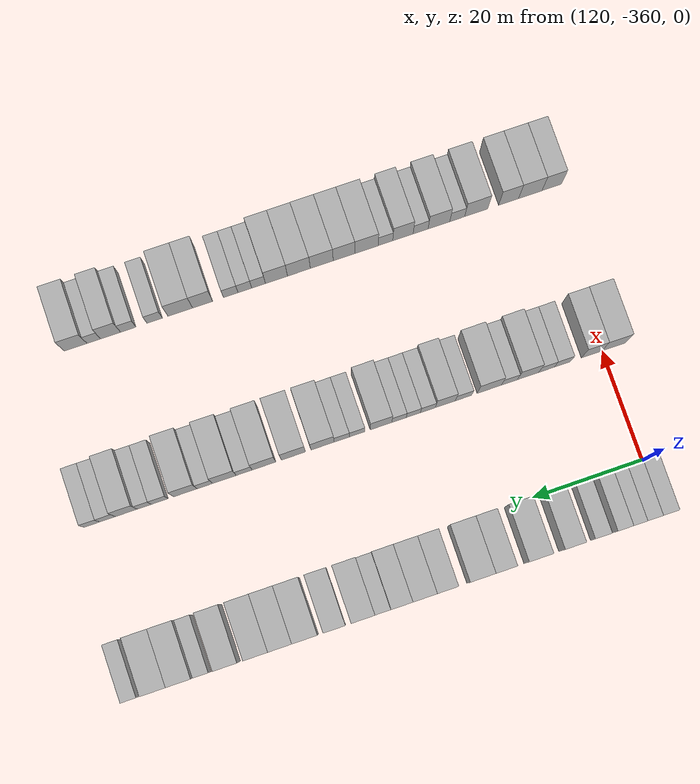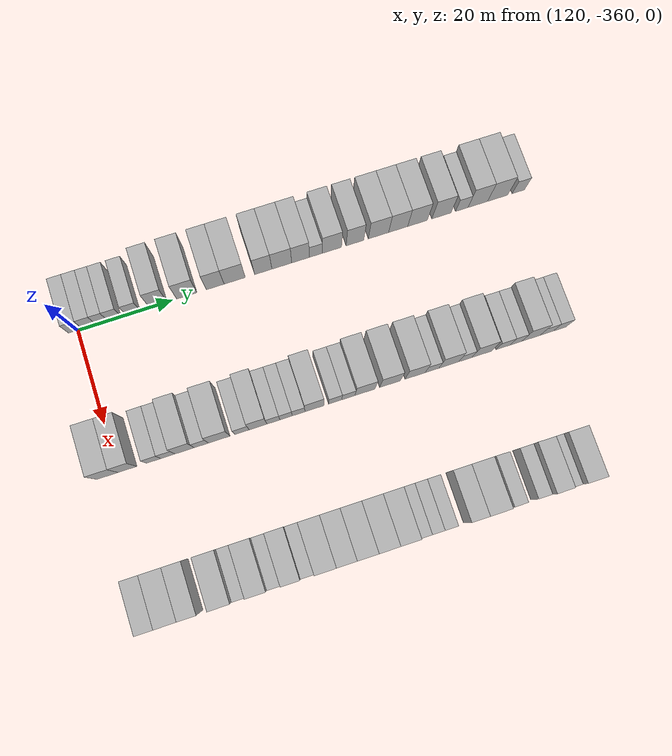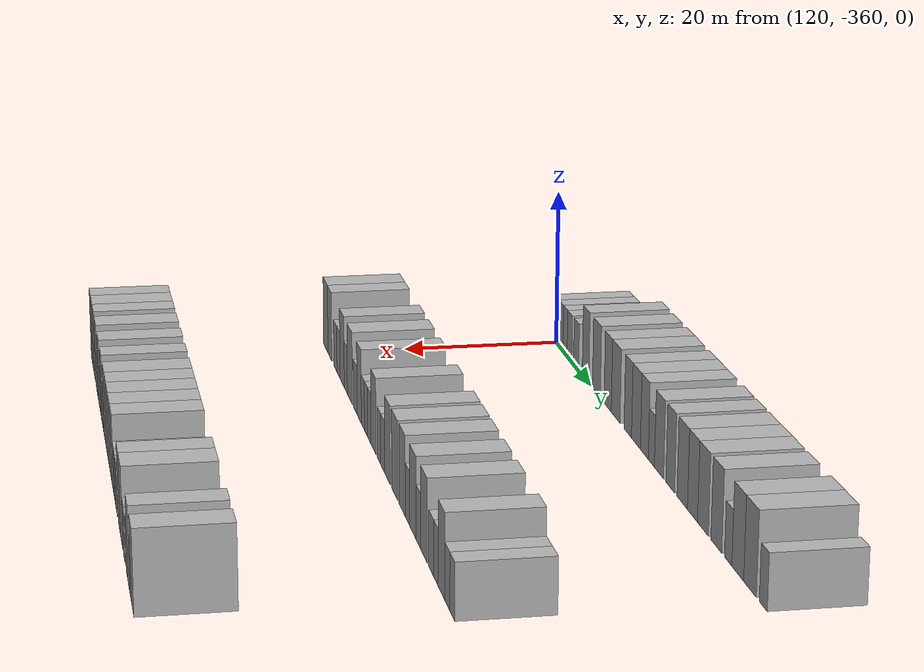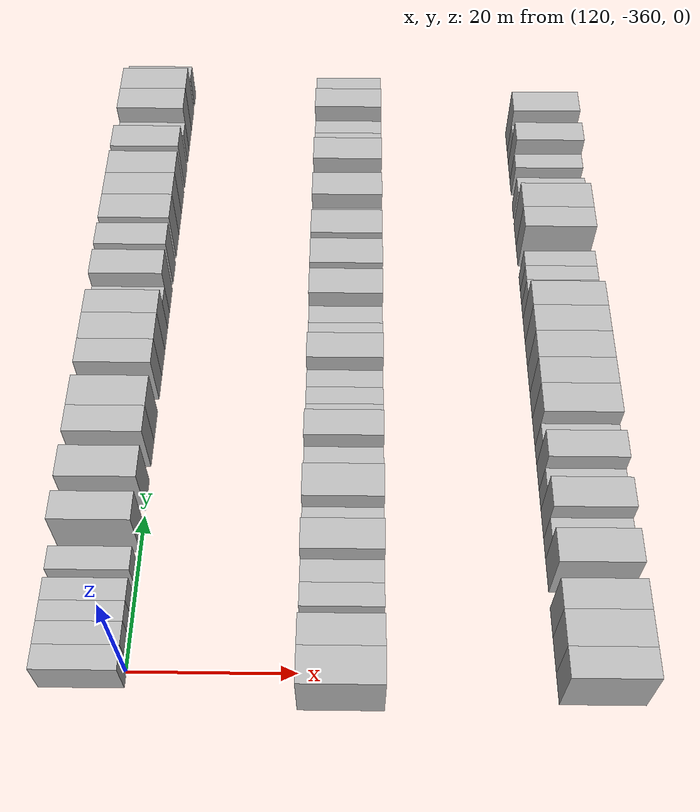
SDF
<sdf version="1.6">
 <world name="default">
  <model name="building_694">
   <static>1</static>
   <pose>115.0000 -360.4342 0 0.000000 0.000000 0.000000</pose>
   <link name="link">
    <pose>0 0 3.00 0 0 0</pose>
    <collision name="collision"><geometry><box><size>10.0000 2.9093 6.0000</size></box></geometry></collision>
    <visual name="visual">
     <cast_shadows>0</cast_shadows>
     <geometry><box><size>10.0000 2.9093 6.0000</size></box></geometry>
     <material>
      <script>
       <uri>model://HANNAS_wall/materials/scripts</uri>
       <uri>model://HANNAS_wall/materials/textures</uri>
       <name>vrc/HANNAS_wall</name>
      </script>
     </material>
    </visual>
   </link>
  </model>
  <model name="building_695">
   <static>1</static>
   <pose>115.0000 -357.5876 0 0.000000 0.000000 0.000000</pose>
   <link name="link">
    <pose>0 0 3.00 0 0 0</pose>
    <collision name="collision"><geometry><box><size>10.0000 2.7839 6.0000</size></box></geometry></collision>
    <visual name="visual">
     <cast_shadows>0</cast_shadows>
     <geometry><box><size>10.0000 2.7839 6.0000</size></box></geometry>
     <material>
      <script>
       <uri>model://HANNAS_wall/materials/scripts</uri>
       <uri>model://HANNAS_wall/materials/textures</uri>
       <name>vrc/HANNAS_wall</name>
      </script>
     </material>
    </visual>
   </link>
  </model>
  <model name="building_696">
   <static>1</static>
   <pose>115.0000 -354.9583 0 0.000000 0.000000 0.000000</pose>
   <link name="link">
    <pose>0 0 3.00 0 0 0</pose>
    <collision name="collision"><geometry><box><size>10.0000 2.4748 6.0000</size></box></geometry></collision>
    <visual name="visual">
     <cast_shadows>0</cast_shadows>
     <geometry><box><size>10.0000 2.4748 6.0000</size></box></geometry>
     <material>
      <script>
       <uri>model://HANNAS_wall/materials/scripts</uri>
       <uri>model://HANNAS_wall/materials/textures</uri>
       <name>vrc/HANNAS_wall</name>
      </script>
     </material>
    </visual>
   </link>
  </model>
  <model name="building_697">
   <static>1</static>
   <pose>115.0000 -352.3182 0 0.000000 0.000000 0.000000</pose>
   <link name="link">
    <pose>0 0 3.00 0 0 0</pose>
    <collision name="collision"><geometry><box><size>10.0000 2.8052 6.0000</size></box></geometry></collision>
    <visual name="visual">
     <cast_shadows>0</cast_shadows>
     <geometry><box><size>10.0000 2.8052 6.0000</size></box></geometry>
     <material>
      <script>
       <uri>model://HANNAS_wall/materials/scripts</uri>
       <uri>model://HANNAS_wall/materials/textures</uri>
       <name>vrc/HANNAS_wall</name>
      </script>
     </material>
    </visual>
   </link>
  </model>
  <model name="building_698">
   <static>1</static>
   <pose>115.0000 -348.4206 0 0.000000 0.000000 0.000000</pose>
   <link name="link">
    <pose>0 0 3.00 0 0 0</pose>
    <collision name="collision"><geometry><box><size>10.0000 2.9900 6.0000</size></box></geometry></collision>
    <visual name="visual">
     <cast_shadows>0</cast_shadows>
     <geometry><box><size>10.0000 2.9900 6.0000</size></box></geometry>
     <material>
      <script>
       <uri>model://HANNAS_wall/materials/scripts</uri>
       <uri>model://HANNAS_wall/materials/textures</uri>
       <name>vrc/HANNAS_wall</name>
      </script>
     </material>
    </visual>
   </link>
  </model>
  <model name="building_699">
   <static>1</static>
   <pose>115.0000 -343.0592 0 0.000000 0.000000 0.000000</pose>
   <link name="link">
    <pose>0 0 4.50 0 0 0</pose>
    <collision name="collision"><geometry><box><size>10.0000 3.7328 9.0000</size></box></geometry></collision>
    <visual name="visual">
     <cast_shadows>0</cast_shadows>
     <geometry><box><size>10.0000 3.7328 9.0000</size></box></geometry>
     <material>
      <script>
       <uri>model://HANNAS_wall/materials/scripts</uri>
       <uri>model://HANNAS_wall/materials/textures</uri>
       <name>vrc/HANNAS_wall</name>
      </script>
     </material>
    </visual>
   </link>
  </model>
  <model name="building_700">
   <static>1</static>
   <pose>115.0000 -337.0517 0 0.000000 0.000000 0.000000</pose>
   <link name="link">
    <pose>0 0 4.50 0 0 0</pose>
    <collision name="collision"><geometry><box><size>10.0000 4.2821 9.0000</size></box></geometry></collision>
    <visual name="visual">
     <cast_shadows>0</cast_shadows>
     <geometry><box><size>10.0000 4.2821 9.0000</size></box></geometry>
     <material>
      <script>
       <uri>model://HANNAS_wall/materials/scripts</uri>
       <uri>model://HANNAS_wall/materials/textures</uri>
       <name>vrc/HANNAS_wall</name>
      </script>
     </material>
    </visual>
   </link>
  </model>
  <model name="building_701">
   <static>1</static>
   <pose>115.0000 -331.0235 0 0.000000 0.000000 0.000000</pose>
   <link name="link">
    <pose>0 0 4.50 0 0 0</pose>
    <collision name="collision"><geometry><box><size>10.0000 3.7744 9.0000</size></box></geometry></collision>
    <visual name="visual">
     <cast_shadows>0</cast_shadows>
     <geometry><box><size>10.0000 3.7744 9.0000</size></box></geometry>
     <material>
      <script>
       <uri>model://HANNAS_wall/materials/scripts</uri>
       <uri>model://HANNAS_wall/materials/textures</uri>
       <name>vrc/HANNAS_wall</name>
      </script>
     </material>
    </visual>
   </link>
  </model>
  <model name="building_702">
   <static>1</static>
   <pose>115.0000 -326.8913 0 0.000000 0.000000 0.000000</pose>
   <link name="link">
    <pose>0 0 4.50 0 0 0</pose>
    <collision name="collision"><geometry><box><size>10.0000 4.4900 9.0000</size></box></geometry></collision>
    <visual name="visual">
     <cast_shadows>0</cast_shadows>
     <geometry><box><size>10.0000 4.4900 9.0000</size></box></geometry>
     <material>
      <script>
       <uri>model://HANNAS_wall/materials/scripts</uri>
       <uri>model://HANNAS_wall/materials/textures</uri>
       <name>vrc/HANNAS_wall</name>
      </script>
     </material>
    </visual>
   </link>
  </model>
  <model name="building_703">
   <static>1</static>
   <pose>115.0000 -320.7964 0 0.000000 0.000000 0.000000</pose>
   <link name="link">
    <pose>0 0 4.50 0 0 0</pose>
    <collision name="collision"><geometry><box><size>10.0000 3.6999 9.0000</size></box></geometry></collision>
    <visual name="visual">
     <cast_shadows>0</cast_shadows>
     <geometry><box><size>10.0000 3.6999 9.0000</size></box></geometry>
     <material>
      <script>
       <uri>model://HANNAS_wall/materials/scripts</uri>
       <uri>model://HANNAS_wall/materials/textures</uri>
       <name>vrc/HANNAS_wall</name>
      </script>
     </material>
    </visual>
   </link>
  </model>
  <model name="building_704">
   <static>1</static>
   <pose>115.0000 -316.8280 0 0.000000 0.000000 0.000000</pose>
   <link name="link">
    <pose>0 0 4.50 0 0 0</pose>
    <collision name="collision"><geometry><box><size>10.0000 4.2368 9.0000</size></box></geometry></collision>
    <visual name="visual">
     <cast_shadows>0</cast_shadows>
     <geometry><box><size>10.0000 4.2368 9.0000</size></box></geometry>
     <material>
      <script>
       <uri>model://HANNAS_wall/materials/scripts</uri>
       <uri>model://HANNAS_wall/materials/textures</uri>
       <name>vrc/HANNAS_wall</name>
      </script>
     </material>
    </visual>
   </link>
  </model>
  <model name="building_705">
   <static>1</static>
   <pose>115.0000 -312.8181 0 0.000000 0.000000 0.000000</pose>
   <link name="link">
    <pose>0 0 4.50 0 0 0</pose>
    <collision name="collision"><geometry><box><size>10.0000 3.7831 9.0000</size></box></geometry></collision>
    <visual name="visual">
     <cast_shadows>0</cast_shadows>
     <geometry><box><size>10.0000 3.7831 9.0000</size></box></geometry>
     <material>
      <script>
       <uri>model://HANNAS_wall/materials/scripts</uri>
       <uri>model://HANNAS_wall/materials/textures</uri>
       <name>vrc/HANNAS_wall</name>
      </script>
     </material>
    </visual>
   </link>
  </model>
  <model name="building_706">
   <static>1</static>
   <pose>115.0000 -309.5266 0 0.000000 0.000000 0.000000</pose>
   <link name="link">
    <pose>0 0 3.00 0 0 0</pose>
    <collision name="collision"><geometry><box><size>10.0000 2.7998 6.0000</size></box></geometry></collision>
    <visual name="visual">
     <cast_shadows>0</cast_shadows>
     <geometry><box><size>10.0000 2.7998 6.0000</size></box></geometry>
     <material>
      <script>
       <uri>model://HANNAS_wall/materials/scripts</uri>
       <uri>model://HANNAS_wall/materials/textures</uri>
       <name>vrc/HANNAS_wall</name>
      </script>
     </material>
    </visual>
   </link>
  </model>
  <model name="building_707">
   <static>1</static>
   <pose>115.0000 -306.0606 0 0.000000 0.000000 0.000000</pose>
   <link name="link">
    <pose>0 0 4.50 0 0 0</pose>
    <collision name="collision"><geometry><box><size>10.0000 4.1321 9.0000</size></box></geometry></collision>
    <visual name="visual">
     <cast_shadows>0</cast_shadows>
     <geometry><box><size>10.0000 4.1321 9.0000</size></box></geometry>
     <material>
      <script>
       <uri>model://HANNAS_wall/materials/scripts</uri>
       <uri>model://HANNAS_wall/materials/textures</uri>
       <name>vrc/HANNAS_wall</name>
      </script>
     </material>
    </visual>
   </link>
  </model>
  <model name="building_708">
   <static>1</static>
   <pose>115.0000 -301.0825 0 0.000000 0.000000 0.000000</pose>
   <link name="link">
    <pose>0 0 4.50 0 0 0</pose>
    <collision name="collision"><geometry><box><size>10.0000 3.8241 9.0000</size></box></geometry></collision>
    <visual name="visual">
     <cast_shadows>0</cast_shadows>
     <geometry><box><size>10.0000 3.8241 9.0000</size></box></geometry>
     <material>
      <script>
       <uri>model://HANNAS_wall/materials/scripts</uri>
       <uri>model://HANNAS_wall/materials/textures</uri>
       <name>vrc/HANNAS_wall</name>
      </script>
     </material>
    </visual>
   </link>
  </model>
  <model name="building_709">
   <static>1</static>
   <pose>115.0000 -295.9669 0 0.000000 0.000000 0.000000</pose>
   <link name="link">
    <pose>0 0 4.50 0 0 0</pose>
    <collision name="collision"><geometry><box><size>10.0000 4.4071 9.0000</size></box></geometry></collision>
    <visual name="visual">
     <cast_shadows>0</cast_shadows>
     <geometry><box><size>10.0000 4.4071 9.0000</size></box></geometry>
     <material>
      <script>
       <uri>model://HANNAS_wall/materials/scripts</uri>
       <uri>model://HANNAS_wall/materials/textures</uri>
       <name>vrc/HANNAS_wall</name>
      </script>
     </material>
    </visual>
   </link>
  </model>
  <model name="building_710">
   <static>1</static>
   <pose>115.0000 -291.6889 0 0.000000 0.000000 0.000000</pose>
   <link name="link">
    <pose>0 0 4.50 0 0 0</pose>
    <collision name="collision"><geometry><box><size>10.0000 4.1489 9.0000</size></box></geometry></collision>
    <visual name="visual">
     <cast_shadows>0</cast_shadows>
     <geometry><box><size>10.0000 4.1489 9.0000</size></box></geometry>
     <material>
      <script>
       <uri>model://HANNAS_wall/materials/scripts</uri>
       <uri>model://HANNAS_wall/materials/textures</uri>
       <name>vrc/HANNAS_wall</name>
      </script>
     </material>
    </visual>
   </link>
  </model>
  <model name="building_711">
   <static>1</static>
   <pose>115.0000 -287.4719 0 0.000000 0.000000 0.000000</pose>
   <link name="link">
    <pose>0 0 4.50 0 0 0</pose>
    <collision name="collision"><geometry><box><size>10.0000 4.2850 9.0000</size></box></geometry></collision>
    <visual name="visual">
     <cast_shadows>0</cast_shadows>
     <geometry><box><size>10.0000 4.2850 9.0000</size></box></geometry>
     <material>
      <script>
       <uri>model://HANNAS_wall/materials/scripts</uri>
       <uri>model://HANNAS_wall/materials/textures</uri>
       <name>vrc/HANNAS_wall</name>
      </script>
     </material>
    </visual>
   </link>
  </model>
  <model name="building_712">
   <static>1</static>
   <pose>115.0000 -282.2263 0 0.000000 0.000000 0.000000</pose>
   <link name="link">
    <pose>0 0 4.50 0 0 0</pose>
    <collision name="collision"><geometry><box><size>10.0000 4.2063 9.0000</size></box></geometry></collision>
    <visual name="visual">
     <cast_shadows>0</cast_shadows>
     <geometry><box><size>10.0000 4.2063 9.0000</size></box></geometry>
     <material>
      <script>
       <uri>model://HANNAS_wall/materials/scripts</uri>
       <uri>model://HANNAS_wall/materials/textures</uri>
       <name>vrc/HANNAS_wall</name>
      </script>
     </material>
    </visual>
   </link>
  </model>
  <model name="building_713">
   <static>1</static>
   <pose>115.0000 -277.7605 0 0.000000 0.000000 0.000000</pose>
   <link name="link">
    <pose>0 0 3.00 0 0 0</pose>
    <collision name="collision"><geometry><box><size>10.0000 2.7254 6.0000</size></box></geometry></collision>
    <visual name="visual">
     <cast_shadows>0</cast_shadows>
     <geometry><box><size>10.0000 2.7254 6.0000</size></box></geometry>
     <material>
      <script>
       <uri>model://HANNAS_wall/materials/scripts</uri>
       <uri>model://HANNAS_wall/materials/textures</uri>
       <name>vrc/HANNAS_wall</name>
      </script>
     </material>
    </visual>
   </link>
  </model>
  <model name="building_714">
   <static>1</static>
   <pose>115.0000 -274.2470 0 0.000000 0.000000 0.000000</pose>
   <link name="link">
    <pose>0 0 4.50 0 0 0</pose>
    <collision name="collision"><geometry><box><size>10.0000 4.3015 9.0000</size></box></geometry></collision>
    <visual name="visual">
     <cast_shadows>0</cast_shadows>
     <geometry><box><size>10.0000 4.3015 9.0000</size></box></geometry>
     <material>
      <script>
       <uri>model://HANNAS_wall/materials/scripts</uri>
       <uri>model://HANNAS_wall/materials/textures</uri>
       <name>vrc/HANNAS_wall</name>
      </script>
     </material>
    </visual>
   </link>
  </model>
  <model name="building_715">
   <static>1</static>
   <pose>115.0000 -269.8625 0 0.000000 0.000000 0.000000</pose>
   <link name="link">
    <pose>0 0 4.50 0 0 0</pose>
    <collision name="collision"><geometry><box><size>10.0000 4.4676 9.0000</size></box></geometry></collision>
    <visual name="visual">
     <cast_shadows>0</cast_shadows>
     <geometry><box><size>10.0000 4.4676 9.0000</size></box></geometry>
     <material>
      <script>
       <uri>model://HANNAS_wall/materials/scripts</uri>
       <uri>model://HANNAS_wall/materials/textures</uri>
       <name>vrc/HANNAS_wall</name>
      </script>
     </material>
    </visual>
   </link>
  </model>
  <model name="building_716">
   <static>1</static>
   <pose>115.0000 -265.2580 0 0.000000 0.000000 0.000000</pose>
   <link name="link">
    <pose>0 0 3.00 0 0 0</pose>
    <collision name="collision"><geometry><box><size>10.0000 2.7414 6.0000</size></box></geometry></collision>
    <visual name="visual">
     <cast_shadows>0</cast_shadows>
     <geometry><box><size>10.0000 2.7414 6.0000</size></box></geometry>
     <material>
      <script>
       <uri>model://HANNAS_wall/materials/scripts</uri>
       <uri>model://HANNAS_wall/materials/textures</uri>
       <name>vrc/HANNAS_wall</name>
      </script>
     </material>
    </visual>
   </link>
  </model>
  <model name="building_914">
   <static>1</static>
   <pose>145.0000 -362.0360 0 0.000000 0.000000 0.000000</pose>
   <link name="link">
    <pose>0 0 4.50 0 0 0</pose>
    <collision name="collision"><geometry><box><size>10.0000 4.3431 9.0000</size></box></geometry></collision>
    <visual name="visual">
     <cast_shadows>0</cast_shadows>
     <geometry><box><size>10.0000 4.3431 9.0000</size></box></geometry>
     <material>
      <script>
       <uri>model://HANNAS_wall/materials/scripts</uri>
       <uri>model://HANNAS_wall/materials/textures</uri>
       <name>vrc/HANNAS_wall</name>
      </script>
     </material>
    </visual>
   </link>
  </model>
  <model name="building_915">
   <static>1</static>
   <pose>145.0000 -357.9948 0 0.000000 0.000000 0.000000</pose>
   <link name="link">
    <pose>0 0 4.50 0 0 0</pose>
    <collision name="collision"><geometry><box><size>10.0000 3.7392 9.0000</size></box></geometry></collision>
    <visual name="visual">
     <cast_shadows>0</cast_shadows>
     <geometry><box><size>10.0000 3.7392 9.0000</size></box></geometry>
     <material>
      <script>
       <uri>model://HANNAS_wall/materials/scripts</uri>
       <uri>model://HANNAS_wall/materials/textures</uri>
       <name>vrc/HANNAS_wall</name>
      </script>
     </material>
    </visual>
   </link>
  </model>
  <model name="building_916">
   <static>1</static>
   <pose>145.0000 -352.6553 0 0.000000 0.000000 0.000000</pose>
   <link name="link">
    <pose>0 0 3.00 0 0 0</pose>
    <collision name="collision"><geometry><box><size>10.0000 2.9399 6.0000</size></box></geometry></collision>
    <visual name="visual">
     <cast_shadows>0</cast_shadows>
     <geometry><box><size>10.0000 2.9399 6.0000</size></box></geometry>
     <material>
      <script>
       <uri>model://HANNAS_wall/materials/scripts</uri>
       <uri>model://HANNAS_wall/materials/textures</uri>
       <name>vrc/HANNAS_wall</name>
      </script>
     </material>
    </visual>
   </link>
  </model>
  <model name="building_917">
   <static>1</static>
   <pose>145.0000 -349.7509 0 0.000000 0.000000 0.000000</pose>
   <link name="link">
    <pose>0 0 3.00 0 0 0</pose>
    <collision name="collision"><geometry><box><size>10.0000 2.8688 6.0000</size></box></geometry></collision>
    <visual name="visual">
     <cast_shadows>0</cast_shadows>
     <geometry><box><size>10.0000 2.8688 6.0000</size></box></geometry>
     <material>
      <script>
       <uri>model://HANNAS_wall/materials/scripts</uri>
       <uri>model://HANNAS_wall/materials/textures</uri>
       <name>vrc/HANNAS_wall</name>
      </script>
     </material>
    </visual>
   </link>
  </model>
  <model name="building_918">
   <static>1</static>
   <pose>145.0000 -346.3592 0 0.000000 0.000000 0.000000</pose>
   <link name="link">
    <pose>0 0 4.50 0 0 0</pose>
    <collision name="collision"><geometry><box><size>10.0000 3.9148 9.0000</size></box></geometry></collision>
    <visual name="visual">
     <cast_shadows>0</cast_shadows>
     <geometry><box><size>10.0000 3.9148 9.0000</size></box></geometry>
     <material>
      <script>
       <uri>model://HANNAS_wall/materials/scripts</uri>
       <uri>model://HANNAS_wall/materials/textures</uri>
       <name>vrc/HANNAS_wall</name>
      </script>
     </material>
    </visual>
   </link>
  </model>
  <model name="building_919">
   <static>1</static>
   <pose>145.0000 -342.9430 0 0.000000 0.000000 0.000000</pose>
   <link name="link">
    <pose>0 0 3.00 0 0 0</pose>
    <collision name="collision"><geometry><box><size>10.0000 2.9177 6.0000</size></box></geometry></collision>
    <visual name="visual">
     <cast_shadows>0</cast_shadows>
     <geometry><box><size>10.0000 2.9177 6.0000</size></box></geometry>
     <material>
      <script>
       <uri>model://HANNAS_wall/materials/scripts</uri>
       <uri>model://HANNAS_wall/materials/textures</uri>
       <name>vrc/HANNAS_wall</name>
      </script>
     </material>
    </visual>
   </link>
  </model>
  <model name="building_920">
   <static>1</static>
   <pose>145.0000 -339.2850 0 0.000000 0.000000 0.000000</pose>
   <link name="link">
    <pose>0 0 4.50 0 0 0</pose>
    <collision name="collision"><geometry><box><size>10.0000 4.3983 9.0000</size></box></geometry></collision>
    <visual name="visual">
     <cast_shadows>0</cast_shadows>
     <geometry><box><size>10.0000 4.3983 9.0000</size></box></geometry>
     <material>
      <script>
       <uri>model://HANNAS_wall/materials/scripts</uri>
       <uri>model://HANNAS_wall/materials/textures</uri>
       <name>vrc/HANNAS_wall</name>
      </script>
     </material>
    </visual>
   </link>
  </model>
  <model name="building_921">
   <static>1</static>
   <pose>145.0000 -334.5981 0 0.000000 0.000000 0.000000</pose>
   <link name="link">
    <pose>0 0 3.00 0 0 0</pose>
    <collision name="collision"><geometry><box><size>10.0000 2.9754 6.0000</size></box></geometry></collision>
    <visual name="visual">
     <cast_shadows>0</cast_shadows>
     <geometry><box><size>10.0000 2.9754 6.0000</size></box></geometry>
     <material>
      <script>
       <uri>model://HANNAS_wall/materials/scripts</uri>
       <uri>model://HANNAS_wall/materials/textures</uri>
       <name>vrc/HANNAS_wall</name>
      </script>
     </material>
    </visual>
   </link>
  </model>
  <model name="building_922">
   <static>1</static>
   <pose>145.0000 -331.2834 0 0.000000 0.000000 0.000000</pose>
   <link name="link">
    <pose>0 0 4.50 0 0 0</pose>
    <collision name="collision"><geometry><box><size>10.0000 3.6539 9.0000</size></box></geometry></collision>
    <visual name="visual">
     <cast_shadows>0</cast_shadows>
     <geometry><box><size>10.0000 3.6539 9.0000</size></box></geometry>
     <material>
      <script>
       <uri>model://HANNAS_wall/materials/scripts</uri>
       <uri>model://HANNAS_wall/materials/textures</uri>
       <name>vrc/HANNAS_wall</name>
      </script>
     </material>
    </visual>
   </link>
  </model>
  <model name="building_923">
   <static>1</static>
   <pose>145.0000 -328.1130 0 0.000000 0.000000 0.000000</pose>
   <link name="link">
    <pose>0 0 3.00 0 0 0</pose>
    <collision name="collision"><geometry><box><size>10.0000 2.6869 6.0000</size></box></geometry></collision>
    <visual name="visual">
     <cast_shadows>0</cast_shadows>
     <geometry><box><size>10.0000 2.6869 6.0000</size></box></geometry>
     <material>
      <script>
       <uri>model://HANNAS_wall/materials/scripts</uri>
       <uri>model://HANNAS_wall/materials/textures</uri>
       <name>vrc/HANNAS_wall</name>
      </script>
     </material>
    </visual>
   </link>
  </model>
  <model name="building_924">
   <static>1</static>
   <pose>145.0000 -325.4902 0 0.000000 0.000000 0.000000</pose>
   <link name="link">
    <pose>0 0 3.00 0 0 0</pose>
    <collision name="collision"><geometry><box><size>10.0000 2.5587 6.0000</size></box></geometry></collision>
    <visual name="visual">
     <cast_shadows>0</cast_shadows>
     <geometry><box><size>10.0000 2.5587 6.0000</size></box></geometry>
     <material>
      <script>
       <uri>model://HANNAS_wall/materials/scripts</uri>
       <uri>model://HANNAS_wall/materials/textures</uri>
       <name>vrc/HANNAS_wall</name>
      </script>
     </material>
    </visual>
   </link>
  </model>
  <model name="building_925">
   <static>1</static>
   <pose>145.0000 -322.8962 0 0.000000 0.000000 0.000000</pose>
   <link name="link">
    <pose>0 0 3.00 0 0 0</pose>
    <collision name="collision"><geometry><box><size>10.0000 2.6293 6.0000</size></box></geometry></collision>
    <visual name="visual">
     <cast_shadows>0</cast_shadows>
     <geometry><box><size>10.0000 2.6293 6.0000</size></box></geometry>
     <material>
      <script>
       <uri>model://HANNAS_wall/materials/scripts</uri>
       <uri>model://HANNAS_wall/materials/textures</uri>
       <name>vrc/HANNAS_wall</name>
      </script>
     </material>
    </visual>
   </link>
  </model>
  <model name="building_926">
   <static>1</static>
   <pose>145.0000 -319.6307 0 0.000000 0.000000 0.000000</pose>
   <link name="link">
    <pose>0 0 4.50 0 0 0</pose>
    <collision name="collision"><geometry><box><size>10.0000 3.9016 9.0000</size></box></geometry></collision>
    <visual name="visual">
     <cast_shadows>0</cast_shadows>
     <geometry><box><size>10.0000 3.9016 9.0000</size></box></geometry>
     <material>
      <script>
       <uri>model://HANNAS_wall/materials/scripts</uri>
       <uri>model://HANNAS_wall/materials/textures</uri>
       <name>vrc/HANNAS_wall</name>
      </script>
     </material>
    </visual>
   </link>
  </model>
  <model name="building_927">
   <static>1</static>
   <pose>145.0000 -315.3042 0 0.000000 0.000000 0.000000</pose>
   <link name="link">
    <pose>0 0 3.00 0 0 0</pose>
    <collision name="collision"><geometry><box><size>10.0000 2.7514 6.0000</size></box></geometry></collision>
    <visual name="visual">
     <cast_shadows>0</cast_shadows>
     <geometry><box><size>10.0000 2.7514 6.0000</size></box></geometry>
     <material>
      <script>
       <uri>model://HANNAS_wall/materials/scripts</uri>
       <uri>model://HANNAS_wall/materials/textures</uri>
       <name>vrc/HANNAS_wall</name>
      </script>
     </material>
    </visual>
   </link>
  </model>
  <model name="building_928">
   <static>1</static>
   <pose>145.0000 -312.5462 0 0.000000 0.000000 0.000000</pose>
   <link name="link">
    <pose>0 0 3.00 0 0 0</pose>
    <collision name="collision"><geometry><box><size>10.0000 2.7645 6.0000</size></box></geometry></collision>
    <visual name="visual">
     <cast_shadows>0</cast_shadows>
     <geometry><box><size>10.0000 2.7645 6.0000</size></box></geometry>
     <material>
      <script>
       <uri>model://HANNAS_wall/materials/scripts</uri>
       <uri>model://HANNAS_wall/materials/textures</uri>
       <name>vrc/HANNAS_wall</name>
      </script>
     </material>
    </visual>
   </link>
  </model>
  <model name="building_929">
   <static>1</static>
   <pose>145.0000 -309.0702 0 0.000000 0.000000 0.000000</pose>
   <link name="link">
    <pose>0 0 4.50 0 0 0</pose>
    <collision name="collision"><geometry><box><size>10.0000 4.1875 9.0000</size></box></geometry></collision>
    <visual name="visual">
     <cast_shadows>0</cast_shadows>
     <geometry><box><size>10.0000 4.1875 9.0000</size></box></geometry>
     <material>
      <script>
       <uri>model://HANNAS_wall/materials/scripts</uri>
       <uri>model://HANNAS_wall/materials/textures</uri>
       <name>vrc/HANNAS_wall</name>
      </script>
     </material>
    </visual>
   </link>
  </model>
  <model name="building_930">
   <static>1</static>
   <pose>145.0000 -303.8087 0 0.000000 0.000000 0.000000</pose>
   <link name="link">
    <pose>0 0 4.50 0 0 0</pose>
    <collision name="collision"><geometry><box><size>10.0000 4.3353 9.0000</size></box></geometry></collision>
    <visual name="visual">
     <cast_shadows>0</cast_shadows>
     <geometry><box><size>10.0000 4.3353 9.0000</size></box></geometry>
     <material>
      <script>
       <uri>model://HANNAS_wall/materials/scripts</uri>
       <uri>model://HANNAS_wall/materials/textures</uri>
       <name>vrc/HANNAS_wall</name>
      </script>
     </material>
    </visual>
   </link>
  </model>
  <model name="building_931">
   <static>1</static>
   <pose>145.0000 -298.5209 0 0.000000 0.000000 0.000000</pose>
   <link name="link">
    <pose>0 0 4.50 0 0 0</pose>
    <collision name="collision"><geometry><box><size>10.0000 4.2405 9.0000</size></box></geometry></collision>
    <visual name="visual">
     <cast_shadows>0</cast_shadows>
     <geometry><box><size>10.0000 4.2405 9.0000</size></box></geometry>
     <material>
      <script>
       <uri>model://HANNAS_wall/materials/scripts</uri>
       <uri>model://HANNAS_wall/materials/textures</uri>
       <name>vrc/HANNAS_wall</name>
      </script>
     </material>
    </visual>
   </link>
  </model>
  <model name="building_932">
   <static>1</static>
   <pose>145.0000 -294.9582 0 0.000000 0.000000 0.000000</pose>
   <link name="link">
    <pose>0 0 3.00 0 0 0</pose>
    <collision name="collision"><geometry><box><size>10.0000 2.8849 6.0000</size></box></geometry></collision>
    <visual name="visual">
     <cast_shadows>0</cast_shadows>
     <geometry><box><size>10.0000 2.8849 6.0000</size></box></geometry>
     <material>
      <script>
       <uri>model://HANNAS_wall/materials/scripts</uri>
       <uri>model://HANNAS_wall/materials/textures</uri>
       <name>vrc/HANNAS_wall</name>
      </script>
     </material>
    </visual>
   </link>
  </model>
  <model name="building_933">
   <static>1</static>
   <pose>145.0000 -291.4003 0 0.000000 0.000000 0.000000</pose>
   <link name="link">
    <pose>0 0 4.50 0 0 0</pose>
    <collision name="collision"><geometry><box><size>10.0000 4.2309 9.0000</size></box></geometry></collision>
    <visual name="visual">
     <cast_shadows>0</cast_shadows>
     <geometry><box><size>10.0000 4.2309 9.0000</size></box></geometry>
     <material>
      <script>
       <uri>model://HANNAS_wall/materials/scripts</uri>
       <uri>model://HANNAS_wall/materials/textures</uri>
       <name>vrc/HANNAS_wall</name>
      </script>
     </material>
    </visual>
   </link>
  </model>
  <model name="building_934">
   <static>1</static>
   <pose>145.0000 -287.8944 0 0.000000 0.000000 0.000000</pose>
   <link name="link">
    <pose>0 0 3.00 0 0 0</pose>
    <collision name="collision"><geometry><box><size>10.0000 2.7811 6.0000</size></box></geometry></collision>
    <visual name="visual">
     <cast_shadows>0</cast_shadows>
     <geometry><box><size>10.0000 2.7811 6.0000</size></box></geometry>
     <material>
      <script>
       <uri>model://HANNAS_wall/materials/scripts</uri>
       <uri>model://HANNAS_wall/materials/textures</uri>
       <name>vrc/HANNAS_wall</name>
      </script>
     </material>
    </visual>
   </link>
  </model>
  <model name="building_935">
   <static>1</static>
   <pose>145.0000 -284.4025 0 0.000000 0.000000 0.000000</pose>
   <link name="link">
    <pose>0 0 4.50 0 0 0</pose>
    <collision name="collision"><geometry><box><size>10.0000 4.2026 9.0000</size></box></geometry></collision>
    <visual name="visual">
     <cast_shadows>0</cast_shadows>
     <geometry><box><size>10.0000 4.2026 9.0000</size></box></geometry>
     <material>
      <script>
       <uri>model://HANNAS_wall/materials/scripts</uri>
       <uri>model://HANNAS_wall/materials/textures</uri>
       <name>vrc/HANNAS_wall</name>
      </script>
     </material>
    </visual>
   </link>
  </model>
  <model name="building_936">
   <static>1</static>
   <pose>145.0000 -279.8185 0 0.000000 0.000000 0.000000</pose>
   <link name="link">
    <pose>0 0 3.00 0 0 0</pose>
    <collision name="collision"><geometry><box><size>10.0000 2.9654 6.0000</size></box></geometry></collision>
    <visual name="visual">
     <cast_shadows>0</cast_shadows>
     <geometry><box><size>10.0000 2.9654 6.0000</size></box></geometry>
     <material>
      <script>
       <uri>model://HANNAS_wall/materials/scripts</uri>
       <uri>model://HANNAS_wall/materials/textures</uri>
       <name>vrc/HANNAS_wall</name>
      </script>
     </material>
    </visual>
   </link>
  </model>
  <model name="building_937">
   <static>1</static>
   <pose>145.0000 -277.0603 0 0.000000 0.000000 0.000000</pose>
   <link name="link">
    <pose>0 0 3.00 0 0 0</pose>
    <collision name="collision"><geometry><box><size>10.0000 2.5512 6.0000</size></box></geometry></collision>
    <visual name="visual">
     <cast_shadows>0</cast_shadows>
     <geometry><box><size>10.0000 2.5512 6.0000</size></box></geometry>
     <material>
      <script>
       <uri>model://HANNAS_wall/materials/scripts</uri>
       <uri>model://HANNAS_wall/materials/textures</uri>
       <name>vrc/HANNAS_wall</name>
      </script>
     </material>
    </visual>
   </link>
  </model>
  <model name="building_938">
   <static>1</static>
   <pose>145.0000 -273.8308 0 0.000000 0.000000 0.000000</pose>
   <link name="link">
    <pose>0 0 4.50 0 0 0</pose>
    <collision name="collision"><geometry><box><size>10.0000 3.9078 9.0000</size></box></geometry></collision>
    <visual name="visual">
     <cast_shadows>0</cast_shadows>
     <geometry><box><size>10.0000 3.9078 9.0000</size></box></geometry>
     <material>
      <script>
       <uri>model://HANNAS_wall/materials/scripts</uri>
       <uri>model://HANNAS_wall/materials/textures</uri>
       <name>vrc/HANNAS_wall</name>
      </script>
     </material>
    </visual>
   </link>
  </model>
  <model name="building_939">
   <static>1</static>
   <pose>145.0000 -270.4740 0 0.000000 0.000000 0.000000</pose>
   <link name="link">
    <pose>0 0 3.00 0 0 0</pose>
    <collision name="collision"><geometry><box><size>10.0000 2.8058 6.0000</size></box></geometry></collision>
    <visual name="visual">
     <cast_shadows>0</cast_shadows>
     <geometry><box><size>10.0000 2.8058 6.0000</size></box></geometry>
     <material>
      <script>
       <uri>model://HANNAS_wall/materials/scripts</uri>
       <uri>model://HANNAS_wall/materials/textures</uri>
       <name>vrc/HANNAS_wall</name>
      </script>
     </material>
    </visual>
   </link>
  </model>
  <model name="building_940">
   <static>1</static>
   <pose>145.0000 -267.6651 0 0.000000 0.000000 0.000000</pose>
   <link name="link">
    <pose>0 0 3.00 0 0 0</pose>
    <collision name="collision"><geometry><box><size>10.0000 2.8120 6.0000</size></box></geometry></collision>
    <visual name="visual">
     <cast_shadows>0</cast_shadows>
     <geometry><box><size>10.0000 2.8120 6.0000</size></box></geometry>
     <material>
      <script>
       <uri>model://HANNAS_wall/materials/scripts</uri>
       <uri>model://HANNAS_wall/materials/textures</uri>
       <name>vrc/HANNAS_wall</name>
      </script>
     </material>
    </visual>
   </link>
  </model>
  <model name="building_1136">
   <static>1</static>
   <pose>175.0000 -361.4769 0 0.000000 0.000000 0.000000</pose>
   <link name="link">
    <pose>0 0 4.50 0 0 0</pose>
    <collision name="collision"><geometry><box><size>10.0000 3.6020 9.0000</size></box></geometry></collision>
    <visual name="visual">
     <cast_shadows>0</cast_shadows>
     <geometry><box><size>10.0000 3.6020 9.0000</size></box></geometry>
     <material>
      <script>
       <uri>model://HANNAS_wall/materials/scripts</uri>
       <uri>model://HANNAS_wall/materials/textures</uri>
       <name>vrc/HANNAS_wall</name>
      </script>
     </material>
    </visual>
   </link>
  </model>
  <model name="building_1137">
   <static>1</static>
   <pose>175.0000 -357.5041 0 0.000000 0.000000 0.000000</pose>
   <link name="link">
    <pose>0 0 4.50 0 0 0</pose>
    <collision name="collision"><geometry><box><size>10.0000 4.3436 9.0000</size></box></geometry></collision>
    <visual name="visual">
     <cast_shadows>0</cast_shadows>
     <geometry><box><size>10.0000 4.3436 9.0000</size></box></geometry>
     <material>
      <script>
       <uri>model://HANNAS_wall/materials/scripts</uri>
       <uri>model://HANNAS_wall/materials/textures</uri>
       <name>vrc/HANNAS_wall</name>
      </script>
     </material>
    </visual>
   </link>
  </model>
  <model name="building_1138">
   <static>1</static>
   <pose>175.0000 -353.4892 0 0.000000 0.000000 0.000000</pose>
   <link name="link">
    <pose>0 0 4.50 0 0 0</pose>
    <collision name="collision"><geometry><box><size>10.0000 3.6861 9.0000</size></box></geometry></collision>
    <visual name="visual">
     <cast_shadows>0</cast_shadows>
     <geometry><box><size>10.0000 3.6861 9.0000</size></box></geometry>
     <material>
      <script>
       <uri>model://HANNAS_wall/materials/scripts</uri>
       <uri>model://HANNAS_wall/materials/textures</uri>
       <name>vrc/HANNAS_wall</name>
      </script>
     </material>
    </visual>
   </link>
  </model>
  <model name="building_1139">
   <static>1</static>
   <pose>175.0000 -347.4993 0 0.000000 0.000000 0.000000</pose>
   <link name="link">
    <pose>0 0 4.50 0 0 0</pose>
    <collision name="collision"><geometry><box><size>10.0000 4.2938 9.0000</size></box></geometry></collision>
    <visual name="visual">
     <cast_shadows>0</cast_shadows>
     <geometry><box><size>10.0000 4.2938 9.0000</size></box></geometry>
     <material>
      <script>
       <uri>model://HANNAS_wall/materials/scripts</uri>
       <uri>model://HANNAS_wall/materials/textures</uri>
       <name>vrc/HANNAS_wall</name>
      </script>
     </material>
    </visual>
   </link>
  </model>
  <model name="building_1140">
   <static>1</static>
   <pose>175.0000 -343.9839 0 0.000000 0.000000 0.000000</pose>
   <link name="link">
    <pose>0 0 3.00 0 0 0</pose>
    <collision name="collision"><geometry><box><size>10.0000 2.7372 6.0000</size></box></geometry></collision>
    <visual name="visual">
     <cast_shadows>0</cast_shadows>
     <geometry><box><size>10.0000 2.7372 6.0000</size></box></geometry>
     <material>
      <script>
       <uri>model://HANNAS_wall/materials/scripts</uri>
       <uri>model://HANNAS_wall/materials/textures</uri>
       <name>vrc/HANNAS_wall</name>
      </script>
     </material>
    </visual>
   </link>
  </model>
  <model name="building_1141">
   <static>1</static>
   <pose>175.0000 -340.6107 0 0.000000 0.000000 0.000000</pose>
   <link name="link">
    <pose>0 0 4.50 0 0 0</pose>
    <collision name="collision"><geometry><box><size>10.0000 4.0092 9.0000</size></box></geometry></collision>
    <visual name="visual">
     <cast_shadows>0</cast_shadows>
     <geometry><box><size>10.0000 4.0092 9.0000</size></box></geometry>
     <material>
      <script>
       <uri>model://HANNAS_wall/materials/scripts</uri>
       <uri>model://HANNAS_wall/materials/textures</uri>
       <name>vrc/HANNAS_wall</name>
      </script>
     </material>
    </visual>
   </link>
  </model>
  <model name="building_1142">
   <static>1</static>
   <pose>175.0000 -337.2326 0 0.000000 0.000000 0.000000</pose>
   <link name="link">
    <pose>0 0 3.00 0 0 0</pose>
    <collision name="collision"><geometry><box><size>10.0000 2.7468 6.0000</size></box></geometry></collision>
    <visual name="visual">
     <cast_shadows>0</cast_shadows>
     <geometry><box><size>10.0000 2.7468 6.0000</size></box></geometry>
     <material>
      <script>
       <uri>model://HANNAS_wall/materials/scripts</uri>
       <uri>model://HANNAS_wall/materials/textures</uri>
       <name>vrc/HANNAS_wall</name>
      </script>
     </material>
    </visual>
   </link>
  </model>
  <model name="building_1143">
   <static>1</static>
   <pose>175.0000 -333.9856 0 0.000000 0.000000 0.000000</pose>
   <link name="link">
    <pose>0 0 4.50 0 0 0</pose>
    <collision name="collision"><geometry><box><size>10.0000 3.7473 9.0000</size></box></geometry></collision>
    <visual name="visual">
     <cast_shadows>0</cast_shadows>
     <geometry><box><size>10.0000 3.7473 9.0000</size></box></geometry>
     <material>
      <script>
       <uri>model://HANNAS_wall/materials/scripts</uri>
       <uri>model://HANNAS_wall/materials/textures</uri>
       <name>vrc/HANNAS_wall</name>
      </script>
     </material>
    </visual>
   </link>
  </model>
  <model name="building_1144">
   <static>1</static>
   <pose>175.0000 -330.7755 0 0.000000 0.000000 0.000000</pose>
   <link name="link">
    <pose>0 0 3.00 0 0 0</pose>
    <collision name="collision"><geometry><box><size>10.0000 2.6728 6.0000</size></box></geometry></collision>
    <visual name="visual">
     <cast_shadows>0</cast_shadows>
     <geometry><box><size>10.0000 2.6728 6.0000</size></box></geometry>
     <material>
      <script>
       <uri>model://HANNAS_wall/materials/scripts</uri>
       <uri>model://HANNAS_wall/materials/textures</uri>
       <name>vrc/HANNAS_wall</name>
      </script>
     </material>
    </visual>
   </link>
  </model>
  <model name="building_1145">
   <static>1</static>
   <pose>175.0000 -327.3067 0 0.000000 0.000000 0.000000</pose>
   <link name="link">
    <pose>0 0 4.50 0 0 0</pose>
    <collision name="collision"><geometry><box><size>10.0000 4.2649 9.0000</size></box></geometry></collision>
    <visual name="visual">
     <cast_shadows>0</cast_shadows>
     <geometry><box><size>10.0000 4.2649 9.0000</size></box></geometry>
     <material>
      <script>
       <uri>model://HANNAS_wall/materials/scripts</uri>
       <uri>model://HANNAS_wall/materials/textures</uri>
       <name>vrc/HANNAS_wall</name>
      </script>
     </material>
    </visual>
   </link>
  </model>
  <model name="building_1146">
   <static>1</static>
   <pose>175.0000 -323.1825 0 0.000000 0.000000 0.000000</pose>
   <link name="link">
    <pose>0 0 4.50 0 0 0</pose>
    <collision name="collision"><geometry><box><size>10.0000 3.9835 9.0000</size></box></geometry></collision>
    <visual name="visual">
     <cast_shadows>0</cast_shadows>
     <geometry><box><size>10.0000 3.9835 9.0000</size></box></geometry>
     <material>
      <script>
       <uri>model://HANNAS_wall/materials/scripts</uri>
       <uri>model://HANNAS_wall/materials/textures</uri>
       <name>vrc/HANNAS_wall</name>
      </script>
     </material>
    </visual>
   </link>
  </model>
  <model name="building_1147">
   <static>1</static>
   <pose>175.0000 -319.0956 0 0.000000 0.000000 0.000000</pose>
   <link name="link">
    <pose>0 0 4.50 0 0 0</pose>
    <collision name="collision"><geometry><box><size>10.0000 4.1902 9.0000</size></box></geometry></collision>
    <visual name="visual">
     <cast_shadows>0</cast_shadows>
     <geometry><box><size>10.0000 4.1902 9.0000</size></box></geometry>
     <material>
      <script>
       <uri>model://HANNAS_wall/materials/scripts</uri>
       <uri>model://HANNAS_wall/materials/textures</uri>
       <name>vrc/HANNAS_wall</name>
      </script>
     </material>
    </visual>
   </link>
  </model>
  <model name="building_1148">
   <static>1</static>
   <pose>175.0000 -314.9147 0 0.000000 0.000000 0.000000</pose>
   <link name="link">
    <pose>0 0 4.50 0 0 0</pose>
    <collision name="collision"><geometry><box><size>10.0000 4.1717 9.0000</size></box></geometry></collision>
    <visual name="visual">
     <cast_shadows>0</cast_shadows>
     <geometry><box><size>10.0000 4.1717 9.0000</size></box></geometry>
     <material>
      <script>
       <uri>model://HANNAS_wall/materials/scripts</uri>
       <uri>model://HANNAS_wall/materials/textures</uri>
       <name>vrc/HANNAS_wall</name>
      </script>
     </material>
    </visual>
   </link>
  </model>
  <model name="building_1149">
   <static>1</static>
   <pose>175.0000 -310.8108 0 0.000000 0.000000 0.000000</pose>
   <link name="link">
    <pose>0 0 4.50 0 0 0</pose>
    <collision name="collision"><geometry><box><size>10.0000 4.0359 9.0000</size></box></geometry></collision>
    <visual name="visual">
     <cast_shadows>0</cast_shadows>
     <geometry><box><size>10.0000 4.0359 9.0000</size></box></geometry>
     <material>
      <script>
       <uri>model://HANNAS_wall/materials/scripts</uri>
       <uri>model://HANNAS_wall/materials/textures</uri>
       <name>vrc/HANNAS_wall</name>
      </script>
     </material>
    </visual>
   </link>
  </model>
  <model name="building_1150">
   <static>1</static>
   <pose>175.0000 -307.5477 0 0.000000 0.000000 0.000000</pose>
   <link name="link">
    <pose>0 0 3.00 0 0 0</pose>
    <collision name="collision"><geometry><box><size>10.0000 2.4903 6.0000</size></box></geometry></collision>
    <visual name="visual">
     <cast_shadows>0</cast_shadows>
     <geometry><box><size>10.0000 2.4903 6.0000</size></box></geometry>
     <material>
      <script>
       <uri>model://HANNAS_wall/materials/scripts</uri>
       <uri>model://HANNAS_wall/materials/textures</uri>
       <name>vrc/HANNAS_wall</name>
      </script>
     </material>
    </visual>
   </link>
  </model>
  <model name="building_1151">
   <static>1</static>
   <pose>175.0000 -305.0562 0 0.000000 0.000000 0.000000</pose>
   <link name="link">
    <pose>0 0 3.00 0 0 0</pose>
    <collision name="collision"><geometry><box><size>10.0000 2.4926 6.0000</size></box></geometry></collision>
    <visual name="visual">
     <cast_shadows>0</cast_shadows>
     <geometry><box><size>10.0000 2.4926 6.0000</size></box></geometry>
     <material>
      <script>
       <uri>model://HANNAS_wall/materials/scripts</uri>
       <uri>model://HANNAS_wall/materials/textures</uri>
       <name>vrc/HANNAS_wall</name>
      </script>
     </material>
    </visual>
   </link>
  </model>
  <model name="building_1152">
   <static>1</static>
   <pose>175.0000 -302.4847 0 0.000000 0.000000 0.000000</pose>
   <link name="link">
    <pose>0 0 3.00 0 0 0</pose>
    <collision name="collision"><geometry><box><size>10.0000 2.6505 6.0000</size></box></geometry></collision>
    <visual name="visual">
     <cast_shadows>0</cast_shadows>
     <geometry><box><size>10.0000 2.6505 6.0000</size></box></geometry>
     <material>
      <script>
       <uri>model://HANNAS_wall/materials/scripts</uri>
       <uri>model://HANNAS_wall/materials/textures</uri>
       <name>vrc/HANNAS_wall</name>
      </script>
     </material>
    </visual>
   </link>
  </model>
  <model name="building_1153">
   <static>1</static>
   <pose>175.0000 -297.3410 0 0.000000 0.000000 0.000000</pose>
   <link name="link">
    <pose>0 0 4.50 0 0 0</pose>
    <collision name="collision"><geometry><box><size>10.0000 3.6368 9.0000</size></box></geometry></collision>
    <visual name="visual">
     <cast_shadows>0</cast_shadows>
     <geometry><box><size>10.0000 3.6368 9.0000</size></box></geometry>
     <material>
      <script>
       <uri>model://HANNAS_wall/materials/scripts</uri>
       <uri>model://HANNAS_wall/materials/textures</uri>
       <name>vrc/HANNAS_wall</name>
      </script>
     </material>
    </visual>
   </link>
  </model>
  <model name="building_1154">
   <static>1</static>
   <pose>175.0000 -293.2787 0 0.000000 0.000000 0.000000</pose>
   <link name="link">
    <pose>0 0 4.50 0 0 0</pose>
    <collision name="collision"><geometry><box><size>10.0000 4.4879 9.0000</size></box></geometry></collision>
    <visual name="visual">
     <cast_shadows>0</cast_shadows>
     <geometry><box><size>10.0000 4.4879 9.0000</size></box></geometry>
     <material>
      <script>
       <uri>model://HANNAS_wall/materials/scripts</uri>
       <uri>model://HANNAS_wall/materials/textures</uri>
       <name>vrc/HANNAS_wall</name>
      </script>
     </material>
    </visual>
   </link>
  </model>
  <model name="building_1155">
   <static>1</static>
   <pose>175.0000 -288.6391 0 0.000000 0.000000 0.000000</pose>
   <link name="link">
    <pose>0 0 3.00 0 0 0</pose>
    <collision name="collision"><geometry><box><size>10.0000 2.7912 6.0000</size></box></geometry></collision>
    <visual name="visual">
     <cast_shadows>0</cast_shadows>
     <geometry><box><size>10.0000 2.7912 6.0000</size></box></geometry>
     <material>
      <script>
       <uri>model://HANNAS_wall/materials/scripts</uri>
       <uri>model://HANNAS_wall/materials/textures</uri>
       <name>vrc/HANNAS_wall</name>
      </script>
     </material>
    </visual>
   </link>
  </model>
  <model name="building_1156">
   <static>1</static>
   <pose>175.0000 -283.8475 0 0.000000 0.000000 0.000000</pose>
   <link name="link">
    <pose>0 0 3.00 0 0 0</pose>
    <collision name="collision"><geometry><box><size>10.0000 2.7921 6.0000</size></box></geometry></collision>
    <visual name="visual">
     <cast_shadows>0</cast_shadows>
     <geometry><box><size>10.0000 2.7921 6.0000</size></box></geometry>
     <material>
      <script>
       <uri>model://HANNAS_wall/materials/scripts</uri>
       <uri>model://HANNAS_wall/materials/textures</uri>
       <name>vrc/HANNAS_wall</name>
      </script>
     </material>
    </visual>
   </link>
  </model>
  <model name="building_1157">
   <static>1</static>
   <pose>175.0000 -280.6459 0 0.000000 0.000000 0.000000</pose>
   <link name="link">
    <pose>0 0 4.50 0 0 0</pose>
    <collision name="collision"><geometry><box><size>10.0000 3.6111 9.0000</size></box></geometry></collision>
    <visual name="visual">
     <cast_shadows>0</cast_shadows>
     <geometry><box><size>10.0000 3.6111 9.0000</size></box></geometry>
     <material>
      <script>
       <uri>model://HANNAS_wall/materials/scripts</uri>
       <uri>model://HANNAS_wall/materials/textures</uri>
       <name>vrc/HANNAS_wall</name>
      </script>
     </material>
    </visual>
   </link>
  </model>
  <model name="building_1158">
   <static>1</static>
   <pose>175.0000 -277.6042 0 0.000000 0.000000 0.000000</pose>
   <link name="link">
    <pose>0 0 3.00 0 0 0</pose>
    <collision name="collision"><geometry><box><size>10.0000 2.4722 6.0000</size></box></geometry></collision>
    <visual name="visual">
     <cast_shadows>0</cast_shadows>
     <geometry><box><size>10.0000 2.4722 6.0000</size></box></geometry>
     <material>
      <script>
       <uri>model://HANNAS_wall/materials/scripts</uri>
       <uri>model://HANNAS_wall/materials/textures</uri>
       <name>vrc/HANNAS_wall</name>
      </script>
     </material>
    </visual>
   </link>
  </model>
  <model name="building_1159">
   <static>1</static>
   <pose>175.0000 -274.3214 0 0.000000 0.000000 0.000000</pose>
   <link name="link">
    <pose>0 0 4.50 0 0 0</pose>
    <collision name="collision"><geometry><box><size>10.0000 4.0934 9.0000</size></box></geometry></collision>
    <visual name="visual">
     <cast_shadows>0</cast_shadows>
     <geometry><box><size>10.0000 4.0934 9.0000</size></box></geometry>
     <material>
      <script>
       <uri>model://HANNAS_wall/materials/scripts</uri>
       <uri>model://HANNAS_wall/materials/textures</uri>
       <name>vrc/HANNAS_wall</name>
      </script>
     </material>
    </visual>
   </link>
  </model>
 </world>
</sdf>
